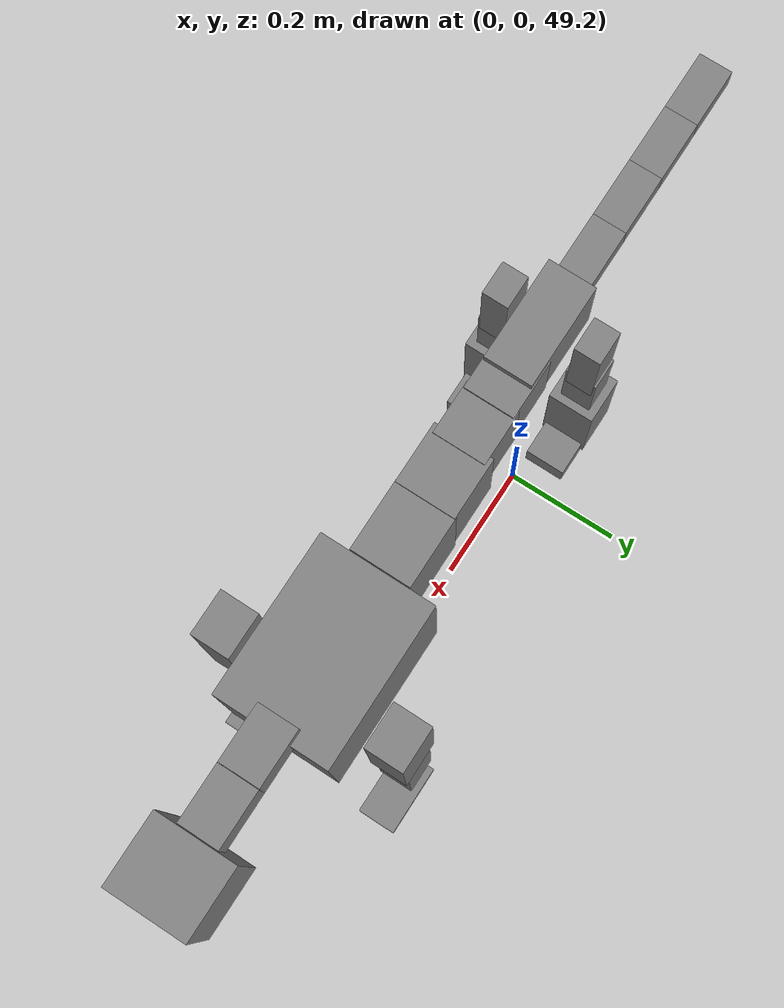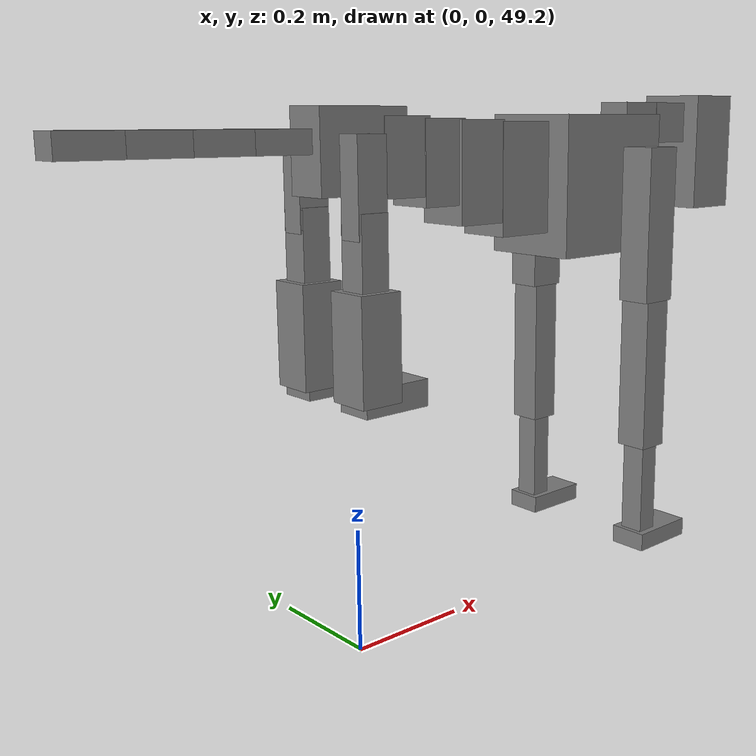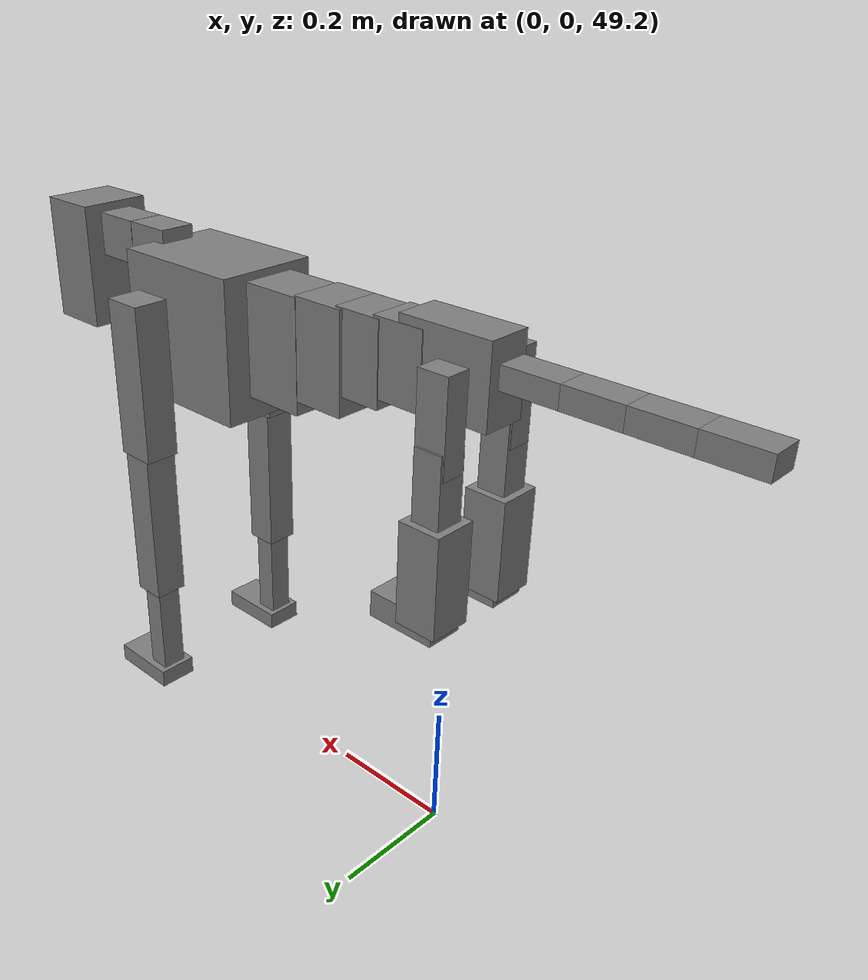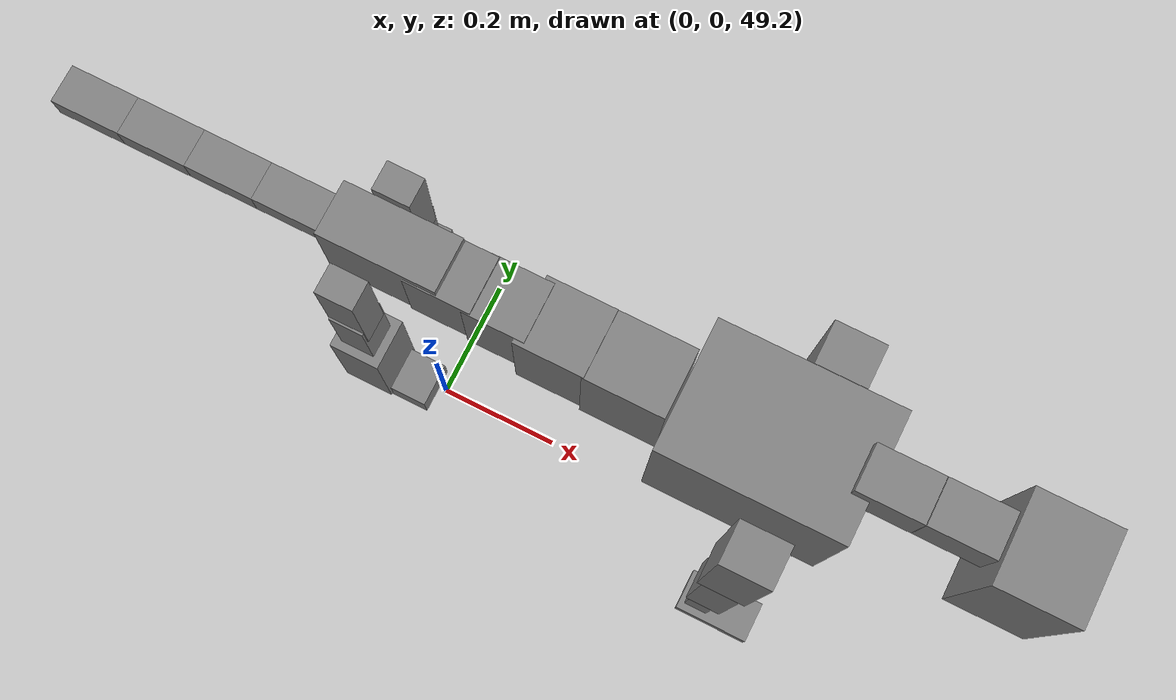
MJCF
<mujoco model="dog">

    <default>
        <joint armature="0.02" stiffness="1" damping="0.2" limited="true"/>
        <geom condim="3" friction="1 0.05 0.05" margin="0.01"/>
        <motor ctrllimited="true" ctrlrange="-1.0 1.0" forcelimited="true" gear="50"/>
    </default>

    <compiler inertiafromgeom="true" angle="radian"/>

    <option timestep="0.016" iterations="50" tolerance="1e-10" solver="Newton" jacobian="dense" cone="pyramidal"/>

    <size nconmax="20000" njmax="60000" nstack="5000000"/>
    <visual>
        <map force="0.1" zfar="30"/>
        <rgba haze="0.15 0.25 0.35 1"/>
        <quality shadowsize="2048"/>
        <global offwidth="800" offheight="800"/>
    </visual>

    <asset>
        <texture type="skybox" builtin="gradient" rgb1="0.3 0.5 0.7" rgb2="0 0 0" width="512" height="512"/>
        <texture name="texplane" type="2d" builtin="checker" rgb1=".2 .3 .4" rgb2=".1 0.15 0.2" width="512" height="512"
                 mark="cross" markrgb=".8 .8 .8"/>
        <texture name="texgeom" type="cube" builtin="flat" mark="cross" width="127" height="1278" rgb1="0.8 0.6 0.4"
                 rgb2="0.8 0.6 0.4" markrgb="1 1 1" random="0.01"/>

        <material name="matplane" reflectance="0.3" texture="texplane" texrepeat="1 1" texuniform="true"/>
        <material name="matgeom" texture="texgeom" texuniform="true" rgba="0.8 0.6 .4 1"/>
    </asset>

    <worldbody>
        <geom name="floor" pos="0 0 0" size="0 0 .25" type="plane" material="matplane" condim="3"/>

        <light directional="false" diffuse=".2 .2 .2" specular="0 0 0" pos="0 0 5" dir="0 0 -1" castshadow="false"/>
        <light mode="targetbodycom" target="torso" directional="false" diffuse=".8 .8 .8" specular="0.3 0.3 0.3"
               pos="0 0 4.0" dir="0 0 -1"/>

        <body name="root" pos="0 0 50">
            <freejoint name="root_1"/>
            <geom type="box" pos="0 0 -0.02" size="0.0774  0.0358  0.063" density="2030"/>

            <body name="spine1" pos="0.054 0 0">
                <joint name="spine1_y" axis="0 1 0" range="0 0.7" limited="true"/>
                <geom type="box" pos="0.02375 0 -0.03" size="0.04375  0.0375  0.05985" density="2030"/>

                <body name="spine2" pos="0.0612 0 0">
                    <joint name="spine2_y" axis="0 1 0" range="-0.15 0.15" limited="true"/>
                    <geom type="box" pos="0.03555  0  -0.04" size="0.04055  0.039  0.06615" density="2030"/>

                    <body name="spine3" pos="0.0730 0 0">
                        <joint name="spine3_y" axis="0 1 0" range="-0.15 0.15" limited="true"/>
                        <geom type="box" pos="0.03555  0  -0.057" size="0.04555  0.0445  0.081" density="2030"/>

                        <body name="spine4" pos="0.0780 0 0">
                            <joint name="spine4_y" axis="0 1 0" range="-0.15 0.15" limited="true"/>
                            <geom type="box" pos="0.05265  0  -0.07" size="0.05265  0.045  0.09135" density="2030"/>

                            <body name="torso" pos="0.1082 0 0">
                                <joint name="torso_y" axis="0 1 0" range="-0.15 0.15" limited="true"/>
                                <geom type="box" pos="0.11925  0  -0.085" size="0.11925  0.085  0.11745"
                                      density="2030"/>

                                <body name="neck1" pos="0.2160  0   0.0180">
                                    <joint name="neck1_y" axis="0 1 0" range="-1.2  -1" limited="true"/>
                                    <geom type="box" pos="0.0423  0  0" size="0.0423  0.03  0.036" density="2325"/>

                                    <body name="neck2" pos="0.0853  0  0">
                                        <joint name="neck2_y" axis="0 1 0" range="0.1  0" limited="true"/>
                                        <geom type="box" pos="0.0423  0  0" size="0.0423  0.03  0.036" density="2325"/>

                                        <body name="head" pos="0.0853  0  0">
                                            <joint name="head_y" axis="0 1 0" range="-0.3  -0.2" limited="true"/>
                                            <geom type="box" pos="0.0531  0  -0.055" size="0.0531  0.06  0.1044"
                                                  density="4030"/>

                                        </body>
                                    </body>
                                </body>

                                <body name="front_shoulder" pos="0.156  0   -0.0480">
                                    <joint name="front_shoulder_y" axis="0 1 0" range="-1 1.5" limited="true"/>
                                    <geom type="box" pos="0 0.13 -0.1037" size="0.0342  0.0292  0.1304" density="1158"/>
                                    <geom type="box" pos="0 -0.13 -0.1037" size="0.0342  0.0292  0.1304"
                                          density="1158"/>

                                    <body name="front_elbow" pos="0  0  -0.2074">
                                        <joint name="front_elbow_y" axis="0 1 0" range="-2 0" limited="true"/>
                                        <geom type="box" pos="0 0.13 -0.1430" size="0.0272  0.0278  0.1430"
                                              density="1081"/>
                                        <geom type="box" pos="0 -0.13 -0.1430" size="0.0272  0.0278  0.1430"
                                              density="1081"/>

                                        <body name="front_wrist" pos="0  0  -0.2859">
                                            <joint name="front_wrist_y" axis="0 1 0" range="-0.2 0" limited="true"/>
                                            <geom type="box" pos="0 0.13 -0.0855" size="0.0187  0.0208  0.0987"
                                                  density="1664"/>
                                            <geom type="box" pos="0 -0.13 -0.0855" size="0.0187  0.0208  0.0987"
                                                  density="1664"/>

                                            <body name="front_finger_end" pos="0  0  -0.1711">
                                                <joint name="front_finger_y" axis="0 1 0" range="-0.4 1"
                                                       limited="true"/>
                                                <geom type="box" pos="0.0327  0.13  -0.0003"
                                                      size="0.0600  0.0327  0.0153" density="1515"/>
                                                <geom type="box" pos="0.0327  -0.13  -0.0003"
                                                      size="0.0600  0.0327  0.0153" density="1515"/>

                                            </body>

                                        </body>
                                    </body>
                                </body>

                            </body>
                        </body>
                    </body>
                </body>
            </body>

            <body name="back_hip" pos="-0.03 0 -0.018">
                <joint name="back_hip_y" axis="0 1 0" range="-1.5 0.3" limited="true"/>
                <geom type="box" pos="0 0.07 -0.0500" size="0.0253  0.0199  0.0728" density="1154"/>
                <geom type="box" pos="0 -0.07 -0.0500" size="0.0253  0.0199  0.0728" density="1154"/>

                <body name="back_knee" pos="0  0  -0.0999">
                    <joint name="back_knee_y" axis="0 1 0" range="0 2.8" limited="true"/>
                    <geom type="box" pos="0 0.07 -0.0532" size="0.0234  0.0231  0.0687" density="1227"/>
                    <geom type="box" pos="0 -0.07 -0.0532" size="0.0234  0.0231  0.0687" density="1227"/>

                    <body name="back_ankle" pos="0  0  -0.1063">
                        <joint name="back_ankle_y" axis="0 1 0" range="-2.2 0" limited="true"/>
                        <geom type="box" pos="0 0.07 -0.0698" size="0.0350  0.0350  0.0811" density="1284"/>
                        <geom type="box" pos="0 -0.07 -0.0698" size="0.0350  0.0350  0.0811" density="1284"/>

                        <body name="back_toe_end" pos="0  0  -0.1397">
                            <joint name="back_toe_y" axis="0 1 0" range="-0.4 1" limited="true"/>
                            <geom type="box" pos="0.0309  0.07  -0.0059" size="0.0566  0.0309  0.0209" density="1515"/>
                            <geom type="box" pos="0.0309  -0.07  -0.0059" size="0.0566  0.0309  0.0209" density="1515"/>

                        </body>
                    </body>
                </body>
            </body>

            <body name="tail1" pos="-0.074 0 -0.006">
                <joint name="tail1_y" axis="0 1 0" range="-0.2 0.2" limited="true"/>
                <geom type="box" pos="-0.0536  0  0" size="0.045  0.025  0.0175" density="1587"/>

                <body name="tail2" pos="-0.09 0 0">
                    <joint name="tail2_y" axis="0 1 0" range="-0.2 0.2" limited="true"/>
                    <geom type="box" pos="-0.0536  0  0" size="0.045  0.025  0.0175" density="1587"/>

                    <body name="tail3" pos="-0.09 0 0">
                        <joint name="tail3_y" axis="0 1 0" range="-0.2 0.2" limited="true"/>
                        <geom type="box" pos="-0.0536  0  0" size="0.045  0.025  0.0175" density="1587"/>

                        <body name="tail4" pos="-0.09 0 0">
                            <joint name="tail4_y" axis="0 1 0" range="-0.2 0.2" limited="true"/>
                            <geom type="box" pos="-0.0536  0  0" size="0.045  0.025  0.0175" density="1587"/>

                        </body>
                    </body>
                </body>
            </body>
        </body>
    </worldbody>

    <actuator>
        <motor joint="spine1_y" forcerange="-150 150     "/>
        <motor joint="spine2_y" forcerange="-150 150     "/>
        <motor joint="spine3_y" forcerange="-150 150     "/>
        <motor joint="spine4_y" forcerange="-150 150     "/>
        <motor joint="torso_y" forcerange="-150 150     "/>
        <motor joint="neck1_y" forcerange="-100 100       "/>
        <motor joint="neck2_y" forcerange="-100 100       "/>
        <motor joint="head_y" forcerange="-150 150       "/>
        <motor joint="front_shoulder_y" forcerange="-103.57 191.16"/>
        <motor joint="front_elbow_y" forcerange="-130.06 172.13"/>
        <motor joint="front_wrist_y" forcerange="-83.07 83.44"/>
        <motor joint="front_finger_y" forcerange="-57.06 77.39"/>
        <motor joint="back_hip_y" forcerange="-259.26 205.59"/>
        <motor joint="back_knee_y" forcerange="-238.30 297.83"/>
        <motor joint="back_angle_y" forcerange="-228.04 232.49"/>
        <motor joint="back_toe_y" forcerange="-98.01 68.88"/>
        <motor joint="tail1_y" forcerange="-50 50     "/>
        <motor joint="tail2_y" forcerange="-50 50     "/>
        <motor joint="tail3_y" forcerange="-50 50     "/>
        <motor joint="tail4_y" forcerange="-50 50     "/>
    </actuator>
</mujoco>
